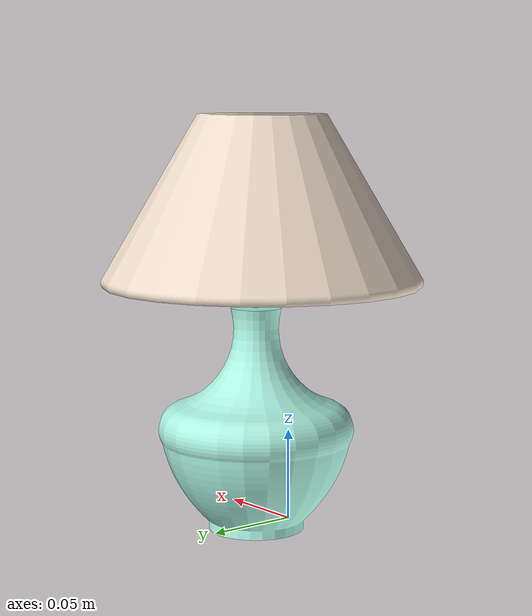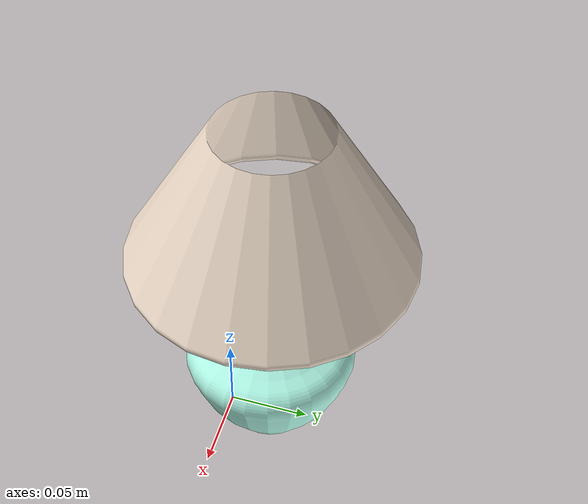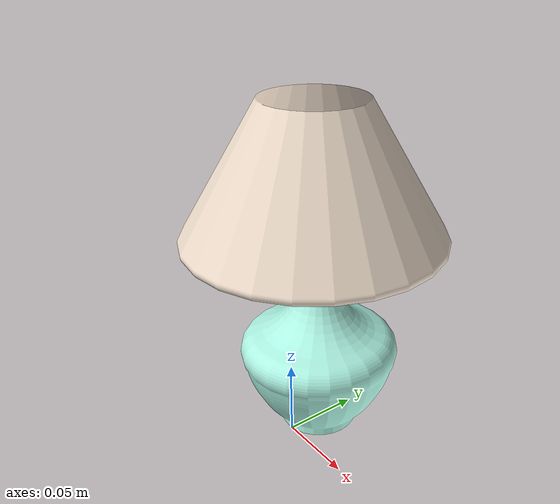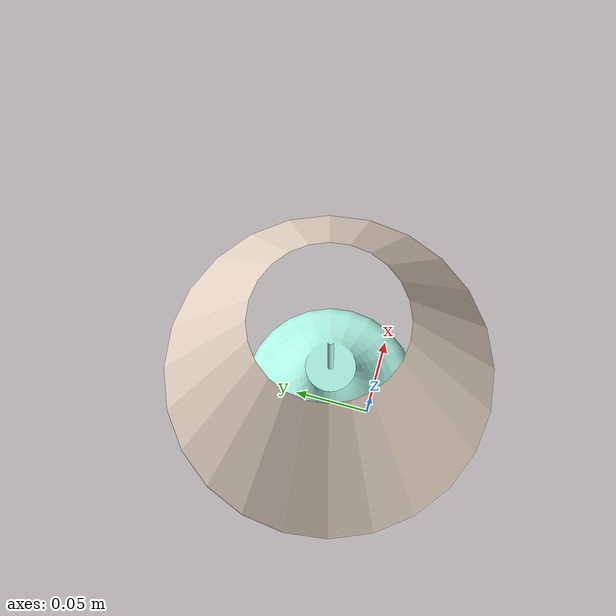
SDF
<?xml version='1.0'?>
<sdf version='1.6'>
  <model name='lamp_table_small'>
    <link name='link_20'>
      <inertial>
        <mass>3</mass>
        <inertia>
          <ixx>0.0572048</ixx>
          <ixy>0</ixy>
          <ixz>0</ixz>
          <iyy>0.0572048</iyy>
          <iyz>0</iyz>
          <izz>0.0271607</izz>
        </inertia>
        <pose frame=''>0 0.02 0.09 0 0 0</pose>
      </inertial>

      <pose frame=''>0 0 0 0 -0 0</pose>
     <visual name='visual_base'>
        <pose frame=''>0 0 0 0 -0 0</pose>
        <geometry>
          <mesh>
            <uri>model://lamp_table_small/meshes/lamp_base.dae</uri>
            <scale>1 1 1</scale>
          </mesh>
        </geometry>
        <material>
          <lighting>1</lighting>
             <ambient>0.6980 0.9843 0.9137 1</ambient>
          <diffuse>0.6980 0.9843 0.9137 1</diffuse>
          <specular>0.01 0.01 0.01 1</specular>
          <emissive>0 0 0 1</emissive>
          <shader type='vertex'>
            <normal_map>__default__</normal_map>
          </shader>
        </material>
        <cast_shadows>1</cast_shadows>
        <transparency>0</transparency>
      </visual>
      <visual name='visual_head'>
        <pose frame=''>0 0 0 0 -0 0</pose>
        <geometry>
          <mesh>
            <uri>model://lamp_table_small/meshes/lamp_head.dae</uri>
            <scale>1 1 1</scale>
          </mesh>
        </geometry>
        <material>
          <lighting>1</lighting>
          <ambient>0.9568 0.8862 0.8156 1</ambient>
          <diffuse>0.9568 0.8862 0.8156 1</diffuse>
          <specular>0.01 0.01 0.01 1</specular>
          <emissive>0 0 0 1</emissive>
        </material>
        <cast_shadows>1</cast_shadows>
        <transparency>0.05</transparency>
      </visual>
      <collision name='collision'>
        <laser_retro>0</laser_retro>
        <max_contacts>2</max_contacts>
        <pose frame=''>-0.0033 0.0251 0 0 0 0</pose>
        <geometry>
          <mesh>
            <uri>model://lamp_table_small/meshes/lamp_full_collision.dae</uri>
            <scale>1 1 1</scale>
          </mesh>
        </geometry>

      </collision>
    </link>
  </model>
</sdf>
